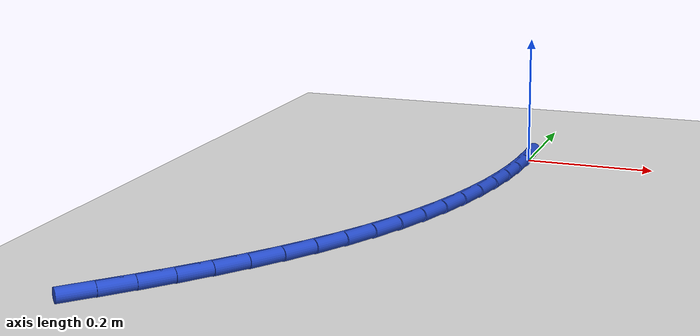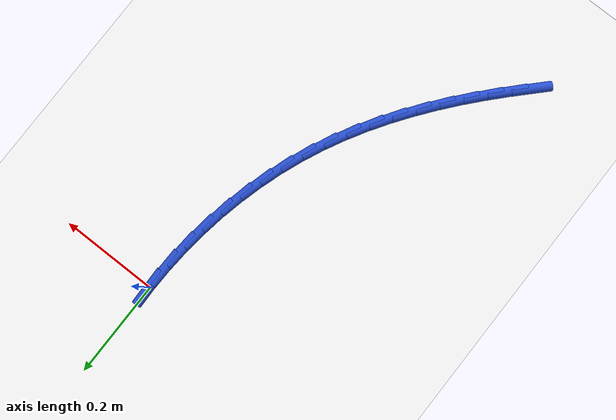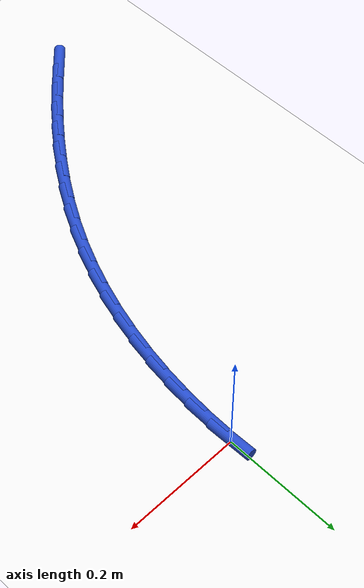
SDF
<sdf version="1.6">
 <world name="default">
  <model name="ground_plane">
   <static>1</static>
   <link name="link">
    <collision name="collision">
     <geometry><plane><normal>0 0 1</normal><size>100 100</size></plane></geometry>
     <surface><friction><ode><mu>100</mu><mu2>50</mu2></ode></friction></surface>
    </collision>
    <visual name="visual">
     <cast_shadows>0</cast_shadows>
     <geometry><plane><normal>0 0 1</normal><size>100 100</size></plane></geometry>
     <material>
      <script><uri>file://media/materials/scripts/gazebo.material</uri><name>Gazebo/WhiteGlow</name></script>
     </material>
    </visual>
   </link>
  </model>
  <model name="line">
   <link name="link_0">
    <pose>-5.204170427930421e-17 -6.938893903907228e-17 0.01 0 1.57 -1.5430489320379732</pose>
    <collision name="collision">
     <geometry><cylinder><radius>0.01</radius><length>0.08</length></cylinder></geometry>
    </collision>
    <visual name="visual">
     <material>
      <script><name>Gazebo/Blue</name><uri>file://media/materials/scripts/gazebo.material</uri></script>
     </material>
     <geometry><cylinder><radius>0.01</radius><length>0.08</length></cylinder></geometry>
    </visual>
   </link>
   <link name="link_132">
    <pose>-0.34154400115182604 -0.7539530989298816 0.01 0 1.57 0.7997480735445999</pose>
    <collision name="collision">
     <geometry><cylinder><radius>0.01</radius><length>0.08</length></cylinder></geometry>
    </collision>
    <visual name="visual">
     <material>
      <script><name>Gazebo/Blue</name><uri>file://media/materials/scripts/gazebo.material</uri></script>
     </material>
     <geometry><cylinder><radius>0.01</radius><length>0.08</length></cylinder></geometry>
    </visual>
   </link>
   <link name="link_133">
    <pose>-0.3088027494092732 -0.7202584322846483 0.01 0 1.57 0.8253771068135755</pose>
    <collision name="collision">
     <geometry><cylinder><radius>0.01</radius><length>0.08</length></cylinder></geometry>
    </collision>
    <visual name="visual">
     <material>
      <script><name>Gazebo/Blue</name><uri>file://media/materials/scripts/gazebo.material</uri></script>
     </material>
     <geometry><cylinder><radius>0.01</radius><length>0.08</length></cylinder></geometry>
    </visual>
   </link>
   <link name="link_134">
    <pose>-0.27679726786584125 -0.6855858094496143 0.01 0 1.57 0.8541505641632267</pose>
    <collision name="collision">
     <geometry><cylinder><radius>0.01</radius><length>0.08</length></cylinder></geometry>
    </collision>
    <visual name="visual">
     <material>
      <script><name>Gazebo/Blue</name><uri>file://media/materials/scripts/gazebo.material</uri></script>
     </material>
     <geometry><cylinder><radius>0.01</radius><length>0.08</length></cylinder></geometry>
    </visual>
   </link>
   <link name="link_135">
    <pose>-0.24572130509403045 -0.6499134981570682 0.01 0 1.57 0.886223830424133</pose>
    <collision name="collision">
     <geometry><cylinder><radius>0.01</radius><length>0.08</length></cylinder></geometry>
    </collision>
    <visual name="visual">
     <material>
      <script><name>Gazebo/Blue</name><uri>file://media/materials/scripts/gazebo.material</uri></script>
     </material>
     <geometry><cylinder><radius>0.01</radius><length>0.08</length></cylinder></geometry>
    </visual>
   </link>
   <link name="link_136">
    <pose>-0.21576994122690094 -0.613219731736135 0.01 0 1.57 0.9217398033179922</pose>
    <collision name="collision">
     <geometry><cylinder><radius>0.01</radius><length>0.08</length></cylinder></geometry>
    </collision>
    <visual name="visual">
     <material>
      <script><name>Gazebo/Blue</name><uri>file://media/materials/scripts/gazebo.material</uri></script>
     </material>
     <geometry><cylinder><radius>0.01</radius><length>0.08</length></cylinder></geometry>
    </visual>
   </link>
   <link name="link_137">
    <pose>-0.18713825639751425 -0.575482743515942 0.01 0 1.57 0.9608397475431697</pose>
    <collision name="collision">
     <geometry><cylinder><radius>0.01</radius><length>0.08</length></cylinder></geometry>
    </collision>
    <visual name="visual">
     <material>
      <script><name>Gazebo/Blue</name><uri>file://media/materials/scripts/gazebo.material</uri></script>
     </material>
     <geometry><cylinder><radius>0.01</radius><length>0.08</length></cylinder></geometry>
    </visual>
   </link>
   <link name="link_138">
    <pose>-0.16002133073893204 -0.536680766825616 0.01 0 1.57 1.0036506052453547</pose>
    <collision name="collision">
     <geometry><cylinder><radius>0.01</radius><length>0.08</length></cylinder></geometry>
    </collision>
    <visual name="visual">
     <material>
      <script><name>Gazebo/Blue</name><uri>file://media/materials/scripts/gazebo.material</uri></script>
     </material>
     <geometry><cylinder><radius>0.01</radius><length>0.08</length></cylinder></geometry>
    </visual>
   </link>
   <link name="link_139">
    <pose>-0.1346142443842143 -0.4967920349942825 0.01 0 1.57 1.0502691939227486</pose>
    <collision name="collision">
     <geometry><cylinder><radius>0.01</radius><length>0.08</length></cylinder></geometry>
    </collision>
    <visual name="visual">
     <material>
      <script><name>Gazebo/Blue</name><uri>file://media/materials/scripts/gazebo.material</uri></script>
     </material>
     <geometry><cylinder><radius>0.01</radius><length>0.08</length></cylinder></geometry>
    </visual>
   </link>
   <link name="link_140">
    <pose>-0.11111207746642313 -0.4557947813510692 0.01 0 1.57 1.1007432576565213</pose>
    <collision name="collision">
     <geometry><cylinder><radius>0.01</radius><length>0.08</length></cylinder></geometry>
    </collision>
    <visual name="visual">
     <material>
      <script><name>Gazebo/Blue</name><uri>file://media/materials/scripts/gazebo.material</uri></script>
     </material>
     <geometry><cylinder><radius>0.01</radius><length>0.08</length></cylinder></geometry>
    </visual>
   </link>
   <link name="link_141">
    <pose>-0.08970991011861867 -0.4136672392251011 0.01 0 1.57 1.1545127770016883</pose>
    <collision name="collision">
     <geometry><cylinder><radius>0.01</radius><length>0.08</length></cylinder></geometry>
    </collision>
    <visual name="visual">
     <material>
      <script><name>Gazebo/Blue</name><uri>file://media/materials/scripts/gazebo.material</uri></script>
     </material>
     <geometry><cylinder><radius>0.01</radius><length>0.08</length></cylinder></geometry>
    </visual>
   </link>
   <link name="link_142">
    <pose>-0.07058254939531057 -0.3704046381601195 0.01 0 1.57 1.2080454406053143</pose>
    <collision name="collision">
     <geometry><cylinder><radius>0.01</radius><length>0.08</length></cylinder></geometry>
    </collision>
    <visual name="visual">
     <material>
      <script><name>Gazebo/Blue</name><uri>file://media/materials/scripts/gazebo.material</uri></script>
     </material>
     <geometry><cylinder><radius>0.01</radius><length>0.08</length></cylinder></geometry>
    </visual>
   </link>
   <link name="link_143">
    <pose>-0.053772006793357356 -0.326113538684541 0.01 0 1.57 1.260062829420699</pose>
    <collision name="collision">
     <geometry><cylinder><radius>0.01</radius><length>0.08</length></cylinder></geometry>
    </collision>
    <visual name="visual">
     <material>
      <script><name>Gazebo/Blue</name><uri>file://media/materials/scripts/gazebo.material</uri></script>
     </material>
     <geometry><cylinder><radius>0.01</radius><length>0.08</length></cylinder></geometry>
    </visual>
   </link>
   <link name="link_144">
    <pose>-0.03926684276393585 -0.28094531274707885 0.01 0 1.57 1.3107430830598825</pose>
    <collision name="collision">
     <geometry><cylinder><radius>0.01</radius><length>0.08</length></cylinder></geometry>
    </collision>
    <visual name="visual">
     <material>
      <script><name>Gazebo/Blue</name><uri>file://media/materials/scripts/gazebo.material</uri></script>
     </material>
     <geometry><cylinder><radius>0.01</radius><length>0.08</length></cylinder></geometry>
    </visual>
   </link>
   <link name="link_145">
    <pose>-0.027055471439000483 -0.23505145496518506 0.01 0 1.57 1.3602845887720687</pose>
    <collision name="collision">
     <geometry><cylinder><radius>0.01</radius><length>0.08</length></cylinder></geometry>
    </collision>
    <visual name="visual">
     <material>
      <script><name>Gazebo/Blue</name><uri>file://media/materials/scripts/gazebo.material</uri></script>
     </material>
     <geometry><cylinder><radius>0.01</radius><length>0.08</length></cylinder></geometry>
    </visual>
   </link>
   <link name="link_146">
    <pose>-0.017126306950504797 -0.18858345995630893 0.01 0 1.57 1.4088980489949636</pose>
    <collision name="collision">
     <geometry><cylinder><radius>0.01</radius><length>0.08</length></cylinder></geometry>
    </collision>
    <visual name="visual">
     <material>
      <script><name>Gazebo/Blue</name><uri>file://media/materials/scripts/gazebo.material</uri></script>
     </material>
     <geometry><cylinder><radius>0.01</radius><length>0.08</length></cylinder></geometry>
    </visual>
   </link>
   <link name="link_147">
    <pose>-0.009467763430402957 -0.1416928223379015 0.01 0 1.57 1.4568036019765787</pose>
    <collision name="collision">
     <geometry><cylinder><radius>0.01</radius><length>0.08</length></cylinder></geometry>
    </collision>
    <visual name="visual">
     <material>
      <script><name>Gazebo/Blue</name><uri>file://media/materials/scripts/gazebo.material</uri></script>
     </material>
     <geometry><cylinder><radius>0.01</radius><length>0.08</length></cylinder></geometry>
    </visual>
   </link>
   <link name="link_148">
    <pose>-0.004068255010648994 -0.09453103672741436 0.01 0 1.57 1.5042289367328923</pose>
    <collision name="collision">
     <geometry><cylinder><radius>0.01</radius><length>0.08</length></cylinder></geometry>
    </collision>
    <visual name="visual">
     <material>
      <script><name>Gazebo/Blue</name><uri>file://media/materials/scripts/gazebo.material</uri></script>
     </material>
     <geometry><cylinder><radius>0.01</radius><length>0.08</length></cylinder></geometry>
    </visual>
   </link>
   <link name="link_149">
    <pose>-0.0009161958231966661 -0.04724959774229644 0.01 0 1.57 1.5514082036157968</pose>
    <collision name="collision">
     <geometry><cylinder><radius>0.01</radius><length>0.08</length></cylinder></geometry>
    </collision>
    <visual name="visual">
     <material>
      <script><name>Gazebo/Blue</name><uri>file://media/materials/scripts/gazebo.material</uri></script>
     </material>
     <geometry><cylinder><radius>0.01</radius><length>0.08</length></cylinder></geometry>
    </visual>
   </link>
  </model>
 </world>
</sdf>
